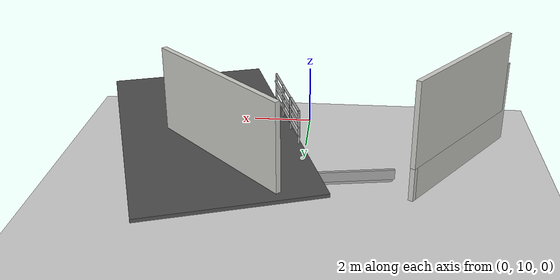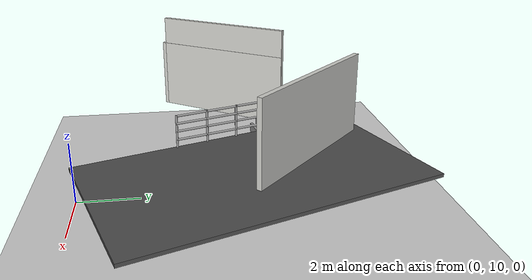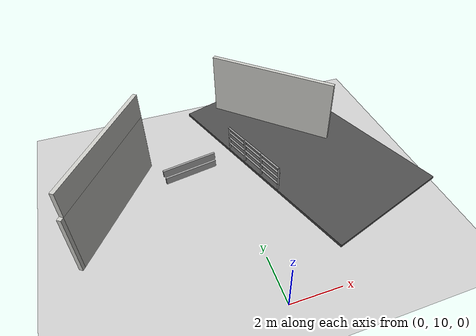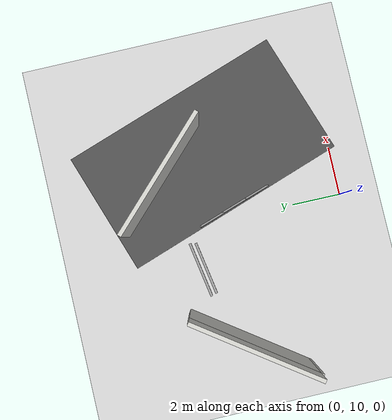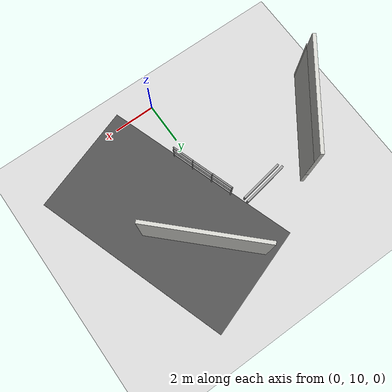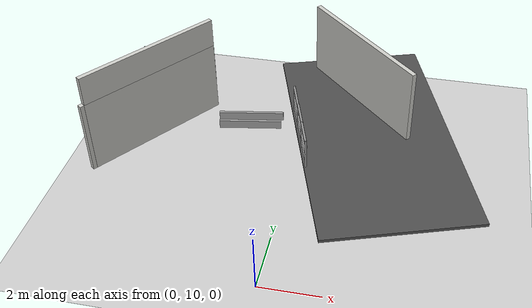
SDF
<sdf version="1.6">
 <world name="default">
  <model name="ground_plane">
   <static>1</static>
   <link name="link">
    <collision name="collision">
     <geometry><plane><normal>0 0 1</normal><size>100 100</size></plane></geometry>
     <surface><friction><ode><mu>100</mu><mu2>50</mu2></ode></friction></surface>
    </collision>
    <visual name="visual">
     <cast_shadows>0</cast_shadows>
     <geometry><plane><normal>0 0 1</normal><size>100 100</size></plane></geometry>
     <material>
      <script><uri>file://media/materials/scripts/gazebo.material</uri><name>Gazebo/Grey</name></script>
     </material>
    </visual>
   </link>
  </model>
  <model name="Untitled_1_0_clone_clone">
   <pose>-5.9653 16.0414 1.05157 0 -0 0.949354</pose>
   <link name="Wall_16">
    <collision name="Wall_16_Collision">
     <geometry><box><size>5 0.15 2.5</size></box></geometry>
     <pose>0 0 1.25 0 -0 0</pose>
    </collision>
    <visual name="Wall_16_Visual">
     <pose>0 0 1.25 0 -0 0</pose>
     <geometry><box><size>5 0.15 2.5</size></box></geometry>
     <material>
      <script><uri>file://media/materials/scripts/gazebo.material</uri><name>Gazebo/CeilingTiled</name></script>
      <ambient>1 1 1 1</ambient>
     </material>
     <meta><layer>0</layer></meta>
    </visual>
    <pose>0 -1.66958 0 0 -0 0</pose>
   </link>
   <static>1</static>
  </model>
  <model name="Untitled_1_0_clone_clone_0">
   <pose>0.845159 15.7579 2.03023 0 -0 2.36363</pose>
   <link name="Wall_16">
    <collision name="Wall_16_Collision">
     <geometry><box><size>5 0.15 2.5</size></box></geometry>
     <pose>0 0 1.25 0 -0 0</pose>
    </collision>
    <visual name="Wall_16_Visual">
     <pose>0 0 1.25 0 -0 0</pose>
     <geometry><box><size>5 0.15 2.5</size></box></geometry>
     <material>
      <script><uri>file://media/materials/scripts/gazebo.material</uri><name>Gazebo/CeilingTiled</name></script>
      <ambient>1 1 1 1</ambient>
     </material>
     <meta><layer>0</layer></meta>
    </visual>
    <pose>0 -1.66958 0 0 -0 0</pose>
   </link>
   <static>1</static>
  </model>
  <model name="Untitled_1_0_clone_clone_clone_0">
   <pose>-6.04514 15.9304 1.05157 0 -0 0.949354</pose>
   <link name="Wall_16">
    <collision name="Wall_16_Collision">
     <geometry><box><size>5 0.15 2.5</size></box></geometry>
     <pose>0 0 1.25 0 -0 0</pose>
    </collision>
    <visual name="Wall_16_Visual">
     <pose>0 0 1.25 0 -0 0</pose>
     <geometry><box><size>5 0.15 2.5</size></box></geometry>
     <material>
      <script><uri>file://media/materials/scripts/gazebo.material</uri><name>Gazebo/CeilingTiled</name></script>
      <ambient>1 1 1 1</ambient>
     </material>
     <meta><layer>0</layer></meta>
    </visual>
    <pose>0 -1.66958 0 0 -0 0</pose>
   </link>
   <static>1</static>
  </model>
  <model name="Untitled_1_0_clone_clone_clone_1">
   <pose>-5.96213 16.0475 2.02791 0 -0 0.949354</pose>
   <link name="Wall_16">
    <collision name="Wall_16_Collision">
     <geometry><box><size>5 0.15 2.5</size></box></geometry>
     <pose>0 0 1.25 0 -0 0</pose>
    </collision>
    <visual name="Wall_16_Visual">
     <pose>0 0 1.25 0 -0 0</pose>
     <geometry><box><size>5 0.15 2.5</size></box></geometry>
     <material>
      <script><uri>file://media/materials/scripts/gazebo.material</uri><name>Gazebo/CeilingTiled</name></script>
      <ambient>1 1 1 1</ambient>
     </material>
     <meta><layer>0</layer></meta>
    </visual>
    <pose>0 -1.66958 0 0 -0 0</pose>
   </link>
   <static>1</static>
  </model>
  <model name="unit_box_0_static_clone_0_clone_clone_0_clone">
   <link name="link">
    <inertial>
     <mass>1</mass>
     <inertia>
      <ixx>0.166667</ixx>
      <ixy>0</ixy>
      <ixz>0</ixz>
      <iyy>0.166667</iyy>
      <iyz>0</iyz>
      <izz>0.166667</izz>
     </inertia>
    </inertial>
    <visual name="visual">
     <geometry><box><size>0.092218 2.12592 0.294956</size></box></geometry>
     <material>
      <script><name>Gazebo/Grey</name><uri>file://media/materials/scripts/gazebo.material</uri></script>
      <shader type="pixel"/>
     </material>
    </visual>
    <collision name="collision">
     <geometry><box><size>0.092218 2.12592 0.294956</size></box></geometry>
     <surface>
      <friction>
       <ode><mu>1</mu><mu2>1</mu2><fdir1>0 0 0</fdir1><slip1>0</slip1><slip2>0</slip2></ode>
       <torsional>
        <coefficient>1</coefficient>
        <patch_radius>0</patch_radius>
        <surface_radius>0</surface_radius>
        <use_patch_radius>1</use_patch_radius>
        <ode><slip>0</slip></ode>
       </torsional>
      </friction>
      <bounce><restitution_coefficient>0</restitution_coefficient><threshold>1e+06</threshold></bounce>
      <contact>
       <collide_without_contact>0</collide_without_contact>
       <collide_without_contact_bitmask>1</collide_without_contact_bitmask>
       <collide_bitmask>1</collide_bitmask>
       <ode>
        <soft_cfm>0</soft_cfm>
        <soft_erp>0.2</soft_erp>
        <kp>1e+13</kp>
        <kd>1</kd>
        <max_vel>0.01</max_vel>
        <min_depth>0</min_depth>
       </ode>
       <bullet>
        <split_impulse>1</split_impulse>
        <split_impulse_penetration_threshold>-0.01</split_impulse_penetration_threshold>
        <soft_cfm>0</soft_cfm>
        <soft_erp>0.2</soft_erp>
        <kp>1e+13</kp>
        <kd>1</kd>
       </bullet>
      </contact>
     </surface>
    </collision>
   </link>
   <static>1</static>
   <pose>-1.6638 16.1101 1.12807 0 0 -1.40144</pose>
  </model>
  <model name="indoor_fence_2">
   <link name="link">
    <inertial>
     <mass>1</mass>
     <inertia><ixx>0.145833</ixx><ixy>0</ixy><ixz>0</ixz><iyy>0.145833</iyy><iyz>0</iyz><izz>0.125</izz></inertia>
    </inertial>
    <pose>0.071704 -0.128855 0 0 -0 0</pose>
    <visual name="visual">
     <geometry><cylinder><radius>0.0332942</radius><length>1</length></cylinder></geometry>
     <material>
      <script><name>Gazebo/Grey</name><uri>file://media/materials/scripts/gazebo.material</uri></script>
      <shader type="pixel"/>
     </material>
    </visual>
    <collision name="collision">
     <geometry><cylinder><radius>0.033294</radius><length>1</length></cylinder></geometry>
     <surface>
      <friction>
       <ode><mu>1</mu><mu2>1</mu2><fdir1>0 0 0</fdir1><slip1>0</slip1><slip2>0</slip2></ode>
       <torsional>
        <coefficient>1</coefficient>
        <patch_radius>0</patch_radius>
        <surface_radius>0</surface_radius>
        <use_patch_radius>1</use_patch_radius>
        <ode><slip>0</slip></ode>
       </torsional>
      </friction>
      <bounce><restitution_coefficient>0</restitution_coefficient><threshold>1e+06</threshold></bounce>
      <contact>
       <collide_without_contact>0</collide_without_contact>
       <collide_without_contact_bitmask>1</collide_without_contact_bitmask>
       <collide_bitmask>1</collide_bitmask>
       <ode>
        <soft_cfm>0</soft_cfm>
        <soft_erp>0.2</soft_erp>
        <kp>1e+13</kp>
        <kd>1</kd>
        <max_vel>0.01</max_vel>
        <min_depth>0</min_depth>
       </ode>
       <bullet>
        <split_impulse>1</split_impulse>
        <split_impulse_penetration_threshold>-0.01</split_impulse_penetration_threshold>
        <soft_cfm>0</soft_cfm>
        <soft_erp>0.2</soft_erp>
        <kp>1e+13</kp>
        <kd>1</kd>
       </bullet>
      </contact>
     </surface>
    </collision>
   </link>
   <link name="link_clone">
    <inertial>
     <mass>1</mass>
     <inertia><ixx>0.145833</ixx><ixy>0</ixy><ixz>0</ixz><iyy>0.145833</iyy><iyz>0</iyz><izz>0.125</izz></inertia>
    </inertial>
    <pose>0.369391 -1.02864 0 0 -0 0</pose>
    <visual name="visual">
     <geometry><cylinder><radius>0.0332942</radius><length>1</length></cylinder></geometry>
     <material>
      <script><name>Gazebo/Grey</name><uri>file://media/materials/scripts/gazebo.material</uri></script>
      <shader type="pixel"/>
     </material>
    </visual>
    <collision name="collision">
     <geometry><cylinder><radius>0.033294</radius><length>1</length></cylinder></geometry>
     <surface>
      <friction>
       <ode><mu>1</mu><mu2>1</mu2><fdir1>0 0 0</fdir1><slip1>0</slip1><slip2>0</slip2></ode>
       <torsional>
        <coefficient>1</coefficient>
        <patch_radius>0</patch_radius>
        <surface_radius>0</surface_radius>
        <use_patch_radius>1</use_patch_radius>
        <ode><slip>0</slip></ode>
       </torsional>
      </friction>
      <bounce><restitution_coefficient>0</restitution_coefficient><threshold>1e+06</threshold></bounce>
      <contact>
       <collide_without_contact>0</collide_without_contact>
       <collide_without_contact_bitmask>1</collide_without_contact_bitmask>
       <collide_bitmask>1</collide_bitmask>
       <ode>
        <soft_cfm>0</soft_cfm>
        <soft_erp>0.2</soft_erp>
        <kp>1e+13</kp>
        <kd>1</kd>
        <max_vel>0.01</max_vel>
        <min_depth>0</min_depth>
       </ode>
       <bullet>
        <split_impulse>1</split_impulse>
        <split_impulse_penetration_threshold>-0.01</split_impulse_penetration_threshold>
        <soft_cfm>0</soft_cfm>
        <soft_erp>0.2</soft_erp>
        <kp>1e+13</kp>
        <kd>1</kd>
       </bullet>
      </contact>
     </surface>
    </collision>
   </link>
   <link name="link_clone_0">
    <inertial>
     <mass>1</mass>
     <inertia><ixx>0.145833</ixx><ixy>0</ixy><ixz>0</ixz><iyy>0.145833</iyy><iyz>0</iyz><izz>0.125</izz></inertia>
    </inertial>
    <pose>0.220035 -0.575022 -0.262394 -1.57275 0.000646 0.319166</pose>
    <visual name="visual">
     <geometry><cylinder><radius>0.0332942</radius><length>1</length></cylinder></geometry>
     <material>
      <script><name>Gazebo/Grey</name><uri>file://media/materials/scripts/gazebo.material</uri></script>
      <shader type="pixel"/>
     </material>
    </visual>
    <collision name="collision">
     <geometry><cylinder><radius>0.033294</radius><length>1</length></cylinder></geometry>
     <surface>
      <friction>
       <ode><mu>1</mu><mu2>1</mu2><fdir1>0 0 0</fdir1><slip1>0</slip1><slip2>0</slip2></ode>
       <torsional>
        <coefficient>1</coefficient>
        <patch_radius>0</patch_radius>
        <surface_radius>0</surface_radius>
        <use_patch_radius>1</use_patch_radius>
        <ode><slip>0</slip></ode>
       </torsional>
      </friction>
      <bounce><restitution_coefficient>0</restitution_coefficient><threshold>1e+06</threshold></bounce>
      <contact>
       <collide_without_contact>0</collide_without_contact>
       <collide_without_contact_bitmask>1</collide_without_contact_bitmask>
       <collide_bitmask>1</collide_bitmask>
       <ode>
        <soft_cfm>0</soft_cfm>
        <soft_erp>0.2</soft_erp>
        <kp>1e+13</kp>
        <kd>1</kd>
        <max_vel>0.01</max_vel>
        <min_depth>0</min_depth>
       </ode>
       <bullet>
        <split_impulse>1</split_impulse>
        <split_impulse_penetration_threshold>-0.01</split_impulse_penetration_threshold>
        <soft_cfm>0</soft_cfm>
        <soft_erp>0.2</soft_erp>
        <kp>1e+13</kp>
        <kd>1</kd>
       </bullet>
      </contact>
     </surface>
    </collision>
   </link>
   <link name="link_clone_0_clone">
    <inertial>
     <mass>1</mass>
     <inertia><ixx>0.145833</ixx><ixy>0</ixy><ixz>0</ixz><iyy>0.145833</iyy><iyz>0</iyz><izz>0.125</izz></inertia>
    </inertial>
    <pose>0.220715 -0.57597 9e-06 -1.57275 0.000646 0.319166</pose>
    <visual name="visual">
     <geometry><cylinder><radius>0.0332942</radius><length>1</length></cylinder></geometry>
     <material>
      <script><name>Gazebo/Grey</name><uri>file://media/materials/scripts/gazebo.material</uri></script>
      <shader type="pixel"/>
     </material>
    </visual>
    <collision name="collision">
     <geometry><cylinder><radius>0.033294</radius><length>1</length></cylinder></geometry>
     <surface>
      <friction>
       <ode><mu>1</mu><mu2>1</mu2><fdir1>0 0 0</fdir1><slip1>0</slip1><slip2>0</slip2></ode>
       <torsional>
        <coefficient>1</coefficient>
        <patch_radius>0</patch_radius>
        <surface_radius>0</surface_radius>
        <use_patch_radius>1</use_patch_radius>
        <ode><slip>0</slip></ode>
       </torsional>
      </friction>
      <bounce><restitution_coefficient>0</restitution_coefficient><threshold>1e+06</threshold></bounce>
      <contact>
       <collide_without_contact>0</collide_without_contact>
       <collide_without_contact_bitmask>1</collide_without_contact_bitmask>
       <collide_bitmask>1</collide_bitmask>
       <ode>
        <soft_cfm>0</soft_cfm>
        <soft_erp>0.2</soft_erp>
        <kp>1e+13</kp>
        <kd>1</kd>
        <max_vel>0.01</max_vel>
        <min_depth>0</min_depth>
       </ode>
       <bullet>
        <split_impulse>1</split_impulse>
        <split_impulse_penetration_threshold>-0.01</split_impulse_penetration_threshold>
        <soft_cfm>0</soft_cfm>
        <soft_erp>0.2</soft_erp>
        <kp>1e+13</kp>
        <kd>1</kd>
       </bullet>
      </contact>
     </surface>
    </collision>
   </link>
   <link name="link_clone_0_clone_0">
    <inertial>
     <mass>1</mass>
     <inertia><ixx>0.145833</ixx><ixy>0</ixy><ixz>0</ixz><iyy>0.145833</iyy><iyz>0</iyz><izz>0.125</izz></inertia>
    </inertial>
    <pose>0.236881 -0.573625 0.245272 -1.57275 0.000646 0.319166</pose>
    <visual name="visual">
     <geometry><cylinder><radius>0.0332942</radius><length>1</length></cylinder></geometry>
     <material>
      <script><name>Gazebo/Grey</name><uri>file://media/materials/scripts/gazebo.material</uri></script>
      <shader type="pixel"/>
     </material>
    </visual>
    <collision name="collision">
     <geometry><cylinder><radius>0.033294</radius><length>1</length></cylinder></geometry>
     <surface>
      <friction>
       <ode><mu>1</mu><mu2>1</mu2><fdir1>0 0 0</fdir1><slip1>0</slip1><slip2>0</slip2></ode>
       <torsional>
        <coefficient>1</coefficient>
        <patch_radius>0</patch_radius>
        <surface_radius>0</surface_radius>
        <use_patch_radius>1</use_patch_radius>
        <ode><slip>0</slip></ode>
       </torsional>
      </friction>
      <bounce><restitution_coefficient>0</restitution_coefficient><threshold>1e+06</threshold></bounce>
      <contact>
       <collide_without_contact>0</collide_without_contact>
       <collide_without_contact_bitmask>1</collide_without_contact_bitmask>
       <collide_bitmask>1</collide_bitmask>
       <ode>
        <soft_cfm>0</soft_cfm>
        <soft_erp>0.2</soft_erp>
        <kp>1e+13</kp>
        <kd>1</kd>
        <max_vel>0.01</max_vel>
        <min_depth>0</min_depth>
       </ode>
       <bullet>
        <split_impulse>1</split_impulse>
        <split_impulse_penetration_threshold>-0.01</split_impulse_penetration_threshold>
        <soft_cfm>0</soft_cfm>
        <soft_erp>0.2</soft_erp>
        <kp>1e+13</kp>
        <kd>1</kd>
       </bullet>
      </contact>
     </surface>
    </collision>
   </link>
   <link name="link_clone_0_clone_1">
    <inertial>
     <mass>1</mass>
     <inertia><ixx>0.145833</ixx><ixy>0</ixy><ixz>0</ixz><iyy>0.145833</iyy><iyz>0</iyz><izz>0.125</izz></inertia>
    </inertial>
    <pose>0.215457 -0.570916 0.471531 -1.57275 0.000646 0.319166</pose>
    <visual name="visual">
     <geometry><cylinder><radius>0.0332942</radius><length>1</length></cylinder></geometry>
     <material>
      <script><name>Gazebo/Grey</name><uri>file://media/materials/scripts/gazebo.material</uri></script>
      <shader type="pixel"/>
     </material>
    </visual>
    <collision name="collision">
     <geometry><cylinder><radius>0.033294</radius><length>1</length></cylinder></geometry>
     <surface>
      <friction>
       <ode><mu>1</mu><mu2>1</mu2><fdir1>0 0 0</fdir1><slip1>0</slip1><slip2>0</slip2></ode>
       <torsional>
        <coefficient>1</coefficient>
        <patch_radius>0</patch_radius>
        <surface_radius>0</surface_radius>
        <use_patch_radius>1</use_patch_radius>
        <ode><slip>0</slip></ode>
       </torsional>
      </friction>
      <bounce><restitution_coefficient>0</restitution_coefficient><threshold>1e+06</threshold></bounce>
      <contact>
       <collide_without_contact>0</collide_without_contact>
       <collide_without_contact_bitmask>1</collide_without_contact_bitmask>
       <collide_bitmask>1</collide_bitmask>
       <ode>
        <soft_cfm>0</soft_cfm>
        <soft_erp>0.2</soft_erp>
        <kp>1e+13</kp>
        <kd>1</kd>
        <max_vel>0.01</max_vel>
        <min_depth>0</min_depth>
       </ode>
       <bullet>
        <split_impulse>1</split_impulse>
        <split_impulse_penetration_threshold>-0.01</split_impulse_penetration_threshold>
        <soft_cfm>0</soft_cfm>
        <soft_erp>0.2</soft_erp>
        <kp>1e+13</kp>
        <kd>1</kd>
       </bullet>
      </contact>
     </surface>
    </collision>
   </link>
   <static>1</static>
   <pose>0.482181 14.2656 2.56606 0 -0 0</pose>
  </model>
  <model name="indoor_fence_3">
   <link name="link">
    <inertial>
     <mass>1</mass>
     <inertia><ixx>0.145833</ixx><ixy>0</ixy><ixz>0</ixz><iyy>0.145833</iyy><iyz>0</iyz><izz>0.125</izz></inertia>
    </inertial>
    <pose>0.071704 -0.128855 0 0 -0 0</pose>
    <visual name="visual">
     <geometry><cylinder><radius>0.0332942</radius><length>1</length></cylinder></geometry>
     <material>
      <script><name>Gazebo/Grey</name><uri>file://media/materials/scripts/gazebo.material</uri></script>
      <shader type="pixel"/>
     </material>
    </visual>
    <collision name="collision">
     <geometry><cylinder><radius>0.033294</radius><length>1</length></cylinder></geometry>
     <surface>
      <friction>
       <ode><mu>1</mu><mu2>1</mu2><fdir1>0 0 0</fdir1><slip1>0</slip1><slip2>0</slip2></ode>
       <torsional>
        <coefficient>1</coefficient>
        <patch_radius>0</patch_radius>
        <surface_radius>0</surface_radius>
        <use_patch_radius>1</use_patch_radius>
        <ode><slip>0</slip></ode>
       </torsional>
      </friction>
      <bounce><restitution_coefficient>0</restitution_coefficient><threshold>1e+06</threshold></bounce>
      <contact>
       <collide_without_contact>0</collide_without_contact>
       <collide_without_contact_bitmask>1</collide_without_contact_bitmask>
       <collide_bitmask>1</collide_bitmask>
       <ode>
        <soft_cfm>0</soft_cfm>
        <soft_erp>0.2</soft_erp>
        <kp>1e+13</kp>
        <kd>1</kd>
        <max_vel>0.01</max_vel>
        <min_depth>0</min_depth>
       </ode>
       <bullet>
        <split_impulse>1</split_impulse>
        <split_impulse_penetration_threshold>-0.01</split_impulse_penetration_threshold>
        <soft_cfm>0</soft_cfm>
        <soft_erp>0.2</soft_erp>
        <kp>1e+13</kp>
        <kd>1</kd>
       </bullet>
      </contact>
     </surface>
    </collision>
   </link>
   <link name="link_clone">
    <inertial>
     <mass>1</mass>
     <inertia><ixx>0.145833</ixx><ixy>0</ixy><ixz>0</ixz><iyy>0.145833</iyy><iyz>0</iyz><izz>0.125</izz></inertia>
    </inertial>
    <pose>0.369391 -1.02864 0 0 -0 0</pose>
    <visual name="visual">
     <geometry><cylinder><radius>0.0332942</radius><length>1</length></cylinder></geometry>
     <material>
      <script><name>Gazebo/Grey</name><uri>file://media/materials/scripts/gazebo.material</uri></script>
      <shader type="pixel"/>
     </material>
    </visual>
    <collision name="collision">
     <geometry><cylinder><radius>0.033294</radius><length>1</length></cylinder></geometry>
     <surface>
      <friction>
       <ode><mu>1</mu><mu2>1</mu2><fdir1>0 0 0</fdir1><slip1>0</slip1><slip2>0</slip2></ode>
       <torsional>
        <coefficient>1</coefficient>
        <patch_radius>0</patch_radius>
        <surface_radius>0</surface_radius>
        <use_patch_radius>1</use_patch_radius>
        <ode><slip>0</slip></ode>
       </torsional>
      </friction>
      <bounce><restitution_coefficient>0</restitution_coefficient><threshold>1e+06</threshold></bounce>
      <contact>
       <collide_without_contact>0</collide_without_contact>
       <collide_without_contact_bitmask>1</collide_without_contact_bitmask>
       <collide_bitmask>1</collide_bitmask>
       <ode>
        <soft_cfm>0</soft_cfm>
        <soft_erp>0.2</soft_erp>
        <kp>1e+13</kp>
        <kd>1</kd>
        <max_vel>0.01</max_vel>
        <min_depth>0</min_depth>
       </ode>
       <bullet>
        <split_impulse>1</split_impulse>
        <split_impulse_penetration_threshold>-0.01</split_impulse_penetration_threshold>
        <soft_cfm>0</soft_cfm>
        <soft_erp>0.2</soft_erp>
        <kp>1e+13</kp>
        <kd>1</kd>
       </bullet>
      </contact>
     </surface>
    </collision>
   </link>
   <link name="link_clone_0">
    <inertial>
     <mass>1</mass>
     <inertia><ixx>0.145833</ixx><ixy>0</ixy><ixz>0</ixz><iyy>0.145833</iyy><iyz>0</iyz><izz>0.125</izz></inertia>
    </inertial>
    <pose>0.220035 -0.575022 -0.262394 -1.57275 0.000646 0.319166</pose>
    <visual name="visual">
     <geometry><cylinder><radius>0.0332942</radius><length>1</length></cylinder></geometry>
     <material>
      <script><name>Gazebo/Grey</name><uri>file://media/materials/scripts/gazebo.material</uri></script>
      <shader type="pixel"/>
     </material>
    </visual>
    <collision name="collision">
     <geometry><cylinder><radius>0.033294</radius><length>1</length></cylinder></geometry>
     <surface>
      <friction>
       <ode><mu>1</mu><mu2>1</mu2><fdir1>0 0 0</fdir1><slip1>0</slip1><slip2>0</slip2></ode>
       <torsional>
        <coefficient>1</coefficient>
        <patch_radius>0</patch_radius>
        <surface_radius>0</surface_radius>
        <use_patch_radius>1</use_patch_radius>
        <ode><slip>0</slip></ode>
       </torsional>
      </friction>
      <bounce><restitution_coefficient>0</restitution_coefficient><threshold>1e+06</threshold></bounce>
      <contact>
       <collide_without_contact>0</collide_without_contact>
       <collide_without_contact_bitmask>1</collide_without_contact_bitmask>
       <collide_bitmask>1</collide_bitmask>
       <ode>
        <soft_cfm>0</soft_cfm>
        <soft_erp>0.2</soft_erp>
        <kp>1e+13</kp>
        <kd>1</kd>
        <max_vel>0.01</max_vel>
        <min_depth>0</min_depth>
       </ode>
       <bullet>
        <split_impulse>1</split_impulse>
        <split_impulse_penetration_threshold>-0.01</split_impulse_penetration_threshold>
        <soft_cfm>0</soft_cfm>
        <soft_erp>0.2</soft_erp>
        <kp>1e+13</kp>
        <kd>1</kd>
       </bullet>
      </contact>
     </surface>
    </collision>
   </link>
   <link name="link_clone_0_clone">
    <inertial>
     <mass>1</mass>
     <inertia><ixx>0.145833</ixx><ixy>0</ixy><ixz>0</ixz><iyy>0.145833</iyy><iyz>0</iyz><izz>0.125</izz></inertia>
    </inertial>
    <pose>0.220715 -0.57597 9e-06 -1.57275 0.000646 0.319166</pose>
    <visual name="visual">
     <geometry><cylinder><radius>0.0332942</radius><length>1</length></cylinder></geometry>
     <material>
      <script><name>Gazebo/Grey</name><uri>file://media/materials/scripts/gazebo.material</uri></script>
      <shader type="pixel"/>
     </material>
    </visual>
    <collision name="collision">
     <geometry><cylinder><radius>0.033294</radius><length>1</length></cylinder></geometry>
     <surface>
      <friction>
       <ode><mu>1</mu><mu2>1</mu2><fdir1>0 0 0</fdir1><slip1>0</slip1><slip2>0</slip2></ode>
       <torsional>
        <coefficient>1</coefficient>
        <patch_radius>0</patch_radius>
        <surface_radius>0</surface_radius>
        <use_patch_radius>1</use_patch_radius>
        <ode><slip>0</slip></ode>
       </torsional>
      </friction>
      <bounce><restitution_coefficient>0</restitution_coefficient><threshold>1e+06</threshold></bounce>
      <contact>
       <collide_without_contact>0</collide_without_contact>
       <collide_without_contact_bitmask>1</collide_without_contact_bitmask>
       <collide_bitmask>1</collide_bitmask>
       <ode>
        <soft_cfm>0</soft_cfm>
        <soft_erp>0.2</soft_erp>
        <kp>1e+13</kp>
        <kd>1</kd>
        <max_vel>0.01</max_vel>
        <min_depth>0</min_depth>
       </ode>
       <bullet>
        <split_impulse>1</split_impulse>
        <split_impulse_penetration_threshold>-0.01</split_impulse_penetration_threshold>
        <soft_cfm>0</soft_cfm>
        <soft_erp>0.2</soft_erp>
        <kp>1e+13</kp>
        <kd>1</kd>
       </bullet>
      </contact>
     </surface>
    </collision>
   </link>
   <link name="link_clone_0_clone_0">
    <inertial>
     <mass>1</mass>
     <inertia><ixx>0.145833</ixx><ixy>0</ixy><ixz>0</ixz><iyy>0.145833</iyy><iyz>0</iyz><izz>0.125</izz></inertia>
    </inertial>
    <pose>0.236881 -0.573625 0.245272 -1.57275 0.000646 0.319166</pose>
    <visual name="visual">
     <geometry><cylinder><radius>0.0332942</radius><length>1</length></cylinder></geometry>
     <material>
      <script><name>Gazebo/Grey</name><uri>file://media/materials/scripts/gazebo.material</uri></script>
      <shader type="pixel"/>
     </material>
    </visual>
    <collision name="collision">
     <geometry><cylinder><radius>0.033294</radius><length>1</length></cylinder></geometry>
     <surface>
      <friction>
       <ode><mu>1</mu><mu2>1</mu2><fdir1>0 0 0</fdir1><slip1>0</slip1><slip2>0</slip2></ode>
       <torsional>
        <coefficient>1</coefficient>
        <patch_radius>0</patch_radius>
        <surface_radius>0</surface_radius>
        <use_patch_radius>1</use_patch_radius>
        <ode><slip>0</slip></ode>
       </torsional>
      </friction>
      <bounce><restitution_coefficient>0</restitution_coefficient><threshold>1e+06</threshold></bounce>
      <contact>
       <collide_without_contact>0</collide_without_contact>
       <collide_without_contact_bitmask>1</collide_without_contact_bitmask>
       <collide_bitmask>1</collide_bitmask>
       <ode>
        <soft_cfm>0</soft_cfm>
        <soft_erp>0.2</soft_erp>
        <kp>1e+13</kp>
        <kd>1</kd>
        <max_vel>0.01</max_vel>
        <min_depth>0</min_depth>
       </ode>
       <bullet>
        <split_impulse>1</split_impulse>
        <split_impulse_penetration_threshold>-0.01</split_impulse_penetration_threshold>
        <soft_cfm>0</soft_cfm>
        <soft_erp>0.2</soft_erp>
        <kp>1e+13</kp>
        <kd>1</kd>
       </bullet>
      </contact>
     </surface>
    </collision>
   </link>
   <link name="link_clone_0_clone_1">
    <inertial>
     <mass>1</mass>
     <inertia><ixx>0.145833</ixx><ixy>0</ixy><ixz>0</ixz><iyy>0.145833</iyy><iyz>0</iyz><izz>0.125</izz></inertia>
    </inertial>
    <pose>0.215457 -0.570916 0.471531 -1.57275 0.000646 0.319166</pose>
    <visual name="visual">
     <geometry><cylinder><radius>0.0332942</radius><length>1</length></cylinder></geometry>
     <material>
      <script><name>Gazebo/Grey</name><uri>file://media/materials/scripts/gazebo.material</uri></script>
      <shader type="pixel"/>
     </material>
    </visual>
    <collision name="collision">
     <geometry><cylinder><radius>0.033294</radius><length>1</length></cylinder></geometry>
     <surface>
      <friction>
       <ode><mu>1</mu><mu2>1</mu2><fdir1>0 0 0</fdir1><slip1>0</slip1><slip2>0</slip2></ode>
       <torsional>
        <coefficient>1</coefficient>
        <patch_radius>0</patch_radius>
        <surface_radius>0</surface_radius>
        <use_patch_radius>1</use_patch_radius>
        <ode><slip>0</slip></ode>
       </torsional>
      </friction>
      <bounce><restitution_coefficient>0</restitution_coefficient><threshold>1e+06</threshold></bounce>
      <contact>
       <collide_without_contact>0</collide_without_contact>
       <collide_without_contact_bitmask>1</collide_without_contact_bitmask>
       <collide_bitmask>1</collide_bitmask>
       <ode>
        <soft_cfm>0</soft_cfm>
        <soft_erp>0.2</soft_erp>
        <kp>1e+13</kp>
        <kd>1</kd>
        <max_vel>0.01</max_vel>
        <min_depth>0</min_depth>
       </ode>
       <bullet>
        <split_impulse>1</split_impulse>
        <split_impulse_penetration_threshold>-0.01</split_impulse_penetration_threshold>
        <soft_cfm>0</soft_cfm>
        <soft_erp>0.2</soft_erp>
        <kp>1e+13</kp>
        <kd>1</kd>
       </bullet>
      </contact>
     </surface>
    </collision>
   </link>
   <static>1</static>
   <pose>0.186416 15.1658 2.56606 0 -0 0</pose>
  </model>
  <model name="indoor_fence_4">
   <link name="link">
    <inertial>
     <mass>1</mass>
     <inertia><ixx>0.145833</ixx><ixy>0</ixy><ixz>0</ixz><iyy>0.145833</iyy><iyz>0</iyz><izz>0.125</izz></inertia>
    </inertial>
    <pose>0.071704 -0.128855 0 0 -0 0</pose>
    <visual name="visual">
     <geometry><cylinder><radius>0.0332942</radius><length>1</length></cylinder></geometry>
     <material>
      <script><name>Gazebo/Grey</name><uri>file://media/materials/scripts/gazebo.material</uri></script>
      <shader type="pixel"/>
     </material>
    </visual>
    <collision name="collision">
     <geometry><cylinder><radius>0.033294</radius><length>1</length></cylinder></geometry>
     <surface>
      <friction>
       <ode><mu>1</mu><mu2>1</mu2><fdir1>0 0 0</fdir1><slip1>0</slip1><slip2>0</slip2></ode>
       <torsional>
        <coefficient>1</coefficient>
        <patch_radius>0</patch_radius>
        <surface_radius>0</surface_radius>
        <use_patch_radius>1</use_patch_radius>
        <ode><slip>0</slip></ode>
       </torsional>
      </friction>
      <bounce><restitution_coefficient>0</restitution_coefficient><threshold>1e+06</threshold></bounce>
      <contact>
       <collide_without_contact>0</collide_without_contact>
       <collide_without_contact_bitmask>1</collide_without_contact_bitmask>
       <collide_bitmask>1</collide_bitmask>
       <ode>
        <soft_cfm>0</soft_cfm>
        <soft_erp>0.2</soft_erp>
        <kp>1e+13</kp>
        <kd>1</kd>
        <max_vel>0.01</max_vel>
        <min_depth>0</min_depth>
       </ode>
       <bullet>
        <split_impulse>1</split_impulse>
        <split_impulse_penetration_threshold>-0.01</split_impulse_penetration_threshold>
        <soft_cfm>0</soft_cfm>
        <soft_erp>0.2</soft_erp>
        <kp>1e+13</kp>
        <kd>1</kd>
       </bullet>
      </contact>
     </surface>
    </collision>
   </link>
   <link name="link_clone">
    <inertial>
     <mass>1</mass>
     <inertia><ixx>0.145833</ixx><ixy>0</ixy><ixz>0</ixz><iyy>0.145833</iyy><iyz>0</iyz><izz>0.125</izz></inertia>
    </inertial>
    <pose>0.369391 -1.02864 0 0 -0 0</pose>
    <visual name="visual">
     <geometry><cylinder><radius>0.0332942</radius><length>1</length></cylinder></geometry>
     <material>
      <script><name>Gazebo/Grey</name><uri>file://media/materials/scripts/gazebo.material</uri></script>
      <shader type="pixel"/>
     </material>
    </visual>
    <collision name="collision">
     <geometry><cylinder><radius>0.033294</radius><length>1</length></cylinder></geometry>
     <surface>
      <friction>
       <ode><mu>1</mu><mu2>1</mu2><fdir1>0 0 0</fdir1><slip1>0</slip1><slip2>0</slip2></ode>
       <torsional>
        <coefficient>1</coefficient>
        <patch_radius>0</patch_radius>
        <surface_radius>0</surface_radius>
        <use_patch_radius>1</use_patch_radius>
        <ode><slip>0</slip></ode>
       </torsional>
      </friction>
      <bounce><restitution_coefficient>0</restitution_coefficient><threshold>1e+06</threshold></bounce>
      <contact>
       <collide_without_contact>0</collide_without_contact>
       <collide_without_contact_bitmask>1</collide_without_contact_bitmask>
       <collide_bitmask>1</collide_bitmask>
       <ode>
        <soft_cfm>0</soft_cfm>
        <soft_erp>0.2</soft_erp>
        <kp>1e+13</kp>
        <kd>1</kd>
        <max_vel>0.01</max_vel>
        <min_depth>0</min_depth>
       </ode>
       <bullet>
        <split_impulse>1</split_impulse>
        <split_impulse_penetration_threshold>-0.01</split_impulse_penetration_threshold>
        <soft_cfm>0</soft_cfm>
        <soft_erp>0.2</soft_erp>
        <kp>1e+13</kp>
        <kd>1</kd>
       </bullet>
      </contact>
     </surface>
    </collision>
   </link>
   <link name="link_clone_0">
    <inertial>
     <mass>1</mass>
     <inertia><ixx>0.145833</ixx><ixy>0</ixy><ixz>0</ixz><iyy>0.145833</iyy><iyz>0</iyz><izz>0.125</izz></inertia>
    </inertial>
    <pose>0.220035 -0.575022 -0.262394 -1.57275 0.000646 0.319166</pose>
    <visual name="visual">
     <geometry><cylinder><radius>0.0332942</radius><length>1</length></cylinder></geometry>
     <material>
      <script><name>Gazebo/Grey</name><uri>file://media/materials/scripts/gazebo.material</uri></script>
      <shader type="pixel"/>
     </material>
    </visual>
    <collision name="collision">
     <geometry><cylinder><radius>0.033294</radius><length>1</length></cylinder></geometry>
     <surface>
      <friction>
       <ode><mu>1</mu><mu2>1</mu2><fdir1>0 0 0</fdir1><slip1>0</slip1><slip2>0</slip2></ode>
       <torsional>
        <coefficient>1</coefficient>
        <patch_radius>0</patch_radius>
        <surface_radius>0</surface_radius>
        <use_patch_radius>1</use_patch_radius>
        <ode><slip>0</slip></ode>
       </torsional>
      </friction>
      <bounce><restitution_coefficient>0</restitution_coefficient><threshold>1e+06</threshold></bounce>
      <contact>
       <collide_without_contact>0</collide_without_contact>
       <collide_without_contact_bitmask>1</collide_without_contact_bitmask>
       <collide_bitmask>1</collide_bitmask>
       <ode>
        <soft_cfm>0</soft_cfm>
        <soft_erp>0.2</soft_erp>
        <kp>1e+13</kp>
        <kd>1</kd>
        <max_vel>0.01</max_vel>
        <min_depth>0</min_depth>
       </ode>
       <bullet>
        <split_impulse>1</split_impulse>
        <split_impulse_penetration_threshold>-0.01</split_impulse_penetration_threshold>
        <soft_cfm>0</soft_cfm>
        <soft_erp>0.2</soft_erp>
        <kp>1e+13</kp>
        <kd>1</kd>
       </bullet>
      </contact>
     </surface>
    </collision>
   </link>
   <link name="link_clone_0_clone">
    <inertial>
     <mass>1</mass>
     <inertia><ixx>0.145833</ixx><ixy>0</ixy><ixz>0</ixz><iyy>0.145833</iyy><iyz>0</iyz><izz>0.125</izz></inertia>
    </inertial>
    <pose>0.220715 -0.57597 9e-06 -1.57275 0.000646 0.319166</pose>
    <visual name="visual">
     <geometry><cylinder><radius>0.0332942</radius><length>1</length></cylinder></geometry>
     <material>
      <script><name>Gazebo/Grey</name><uri>file://media/materials/scripts/gazebo.material</uri></script>
      <shader type="pixel"/>
     </material>
    </visual>
    <collision name="collision">
     <geometry><cylinder><radius>0.033294</radius><length>1</length></cylinder></geometry>
     <surface>
      <friction>
       <ode><mu>1</mu><mu2>1</mu2><fdir1>0 0 0</fdir1><slip1>0</slip1><slip2>0</slip2></ode>
       <torsional>
        <coefficient>1</coefficient>
        <patch_radius>0</patch_radius>
        <surface_radius>0</surface_radius>
        <use_patch_radius>1</use_patch_radius>
        <ode><slip>0</slip></ode>
       </torsional>
      </friction>
      <bounce><restitution_coefficient>0</restitution_coefficient><threshold>1e+06</threshold></bounce>
      <contact>
       <collide_without_contact>0</collide_without_contact>
       <collide_without_contact_bitmask>1</collide_without_contact_bitmask>
       <collide_bitmask>1</collide_bitmask>
       <ode>
        <soft_cfm>0</soft_cfm>
        <soft_erp>0.2</soft_erp>
        <kp>1e+13</kp>
        <kd>1</kd>
        <max_vel>0.01</max_vel>
        <min_depth>0</min_depth>
       </ode>
       <bullet>
        <split_impulse>1</split_impulse>
        <split_impulse_penetration_threshold>-0.01</split_impulse_penetration_threshold>
        <soft_cfm>0</soft_cfm>
        <soft_erp>0.2</soft_erp>
        <kp>1e+13</kp>
        <kd>1</kd>
       </bullet>
      </contact>
     </surface>
    </collision>
   </link>
   <link name="link_clone_0_clone_0">
    <inertial>
     <mass>1</mass>
     <inertia><ixx>0.145833</ixx><ixy>0</ixy><ixz>0</ixz><iyy>0.145833</iyy><iyz>0</iyz><izz>0.125</izz></inertia>
    </inertial>
    <pose>0.236881 -0.573625 0.245272 -1.57275 0.000646 0.319166</pose>
    <visual name="visual">
     <geometry><cylinder><radius>0.0332942</radius><length>1</length></cylinder></geometry>
     <material>
      <script><name>Gazebo/Grey</name><uri>file://media/materials/scripts/gazebo.material</uri></script>
      <shader type="pixel"/>
     </material>
    </visual>
    <collision name="collision">
     <geometry><cylinder><radius>0.033294</radius><length>1</length></cylinder></geometry>
     <surface>
      <friction>
       <ode><mu>1</mu><mu2>1</mu2><fdir1>0 0 0</fdir1><slip1>0</slip1><slip2>0</slip2></ode>
       <torsional>
        <coefficient>1</coefficient>
        <patch_radius>0</patch_radius>
        <surface_radius>0</surface_radius>
        <use_patch_radius>1</use_patch_radius>
        <ode><slip>0</slip></ode>
       </torsional>
      </friction>
      <bounce><restitution_coefficient>0</restitution_coefficient><threshold>1e+06</threshold></bounce>
      <contact>
       <collide_without_contact>0</collide_without_contact>
       <collide_without_contact_bitmask>1</collide_without_contact_bitmask>
       <collide_bitmask>1</collide_bitmask>
       <ode>
        <soft_cfm>0</soft_cfm>
        <soft_erp>0.2</soft_erp>
        <kp>1e+13</kp>
        <kd>1</kd>
        <max_vel>0.01</max_vel>
        <min_depth>0</min_depth>
       </ode>
       <bullet>
        <split_impulse>1</split_impulse>
        <split_impulse_penetration_threshold>-0.01</split_impulse_penetration_threshold>
        <soft_cfm>0</soft_cfm>
        <soft_erp>0.2</soft_erp>
        <kp>1e+13</kp>
        <kd>1</kd>
       </bullet>
      </contact>
     </surface>
    </collision>
   </link>
   <link name="link_clone_0_clone_1">
    <inertial>
     <mass>1</mass>
     <inertia><ixx>0.145833</ixx><ixy>0</ixy><ixz>0</ixz><iyy>0.145833</iyy><iyz>0</iyz><izz>0.125</izz></inertia>
    </inertial>
    <pose>0.215457 -0.570916 0.471531 -1.57275 0.000646 0.319166</pose>
    <visual name="visual">
     <geometry><cylinder><radius>0.0332942</radius><length>1</length></cylinder></geometry>
     <material>
      <script><name>Gazebo/Grey</name><uri>file://media/materials/scripts/gazebo.material</uri></script>
      <shader type="pixel"/>
     </material>
    </visual>
    <collision name="collision">
     <geometry><cylinder><radius>0.033294</radius><length>1</length></cylinder></geometry>
     <surface>
      <friction>
       <ode><mu>1</mu><mu2>1</mu2><fdir1>0 0 0</fdir1><slip1>0</slip1><slip2>0</slip2></ode>
       <torsional>
        <coefficient>1</coefficient>
        <patch_radius>0</patch_radius>
        <surface_radius>0</surface_radius>
        <use_patch_radius>1</use_patch_radius>
        <ode><slip>0</slip></ode>
       </torsional>
      </friction>
      <bounce><restitution_coefficient>0</restitution_coefficient><threshold>1e+06</threshold></bounce>
      <contact>
       <collide_without_contact>0</collide_without_contact>
       <collide_without_contact_bitmask>1</collide_without_contact_bitmask>
       <collide_bitmask>1</collide_bitmask>
       <ode>
        <soft_cfm>0</soft_cfm>
        <soft_erp>0.2</soft_erp>
        <kp>1e+13</kp>
        <kd>1</kd>
        <max_vel>0.01</max_vel>
        <min_depth>0</min_depth>
       </ode>
       <bullet>
        <split_impulse>1</split_impulse>
        <split_impulse_penetration_threshold>-0.01</split_impulse_penetration_threshold>
        <soft_cfm>0</soft_cfm>
        <soft_erp>0.2</soft_erp>
        <kp>1e+13</kp>
        <kd>1</kd>
       </bullet>
      </contact>
     </surface>
    </collision>
   </link>
   <static>1</static>
   <pose>-0.121761 16.0612 2.56606 0 -0 0</pose>
  </model>
  <model name="unit_box_0_static_clone_0_clone_clone_0_clone_clone">
   <link name="link">
    <inertial>
     <mass>1</mass>
     <inertia>
      <ixx>0.166667</ixx>
      <ixy>0</ixy>
      <ixz>0</ixz>
      <iyy>0.166667</iyy>
      <iyz>0</iyz>
      <izz>0.166667</izz>
     </inertia>
    </inertial>
    <visual name="visual">
     <geometry><box><size>0.092218 2.20724 0.294956</size></box></geometry>
     <material>
      <script><name>Gazebo/Grey</name><uri>file://media/materials/scripts/gazebo.material</uri></script>
      <shader type="pixel"/>
     </material>
    </visual>
    <collision name="collision">
     <geometry><box><size>0.092218 2.20724 0.294956</size></box></geometry>
     <surface>
      <friction>
       <ode><mu>1</mu><mu2>1</mu2><fdir1>0 0 0</fdir1><slip1>0</slip1><slip2>0</slip2></ode>
       <torsional>
        <coefficient>1</coefficient>
        <patch_radius>0</patch_radius>
        <surface_radius>0</surface_radius>
        <use_patch_radius>1</use_patch_radius>
        <ode><slip>0</slip></ode>
       </torsional>
      </friction>
      <bounce><restitution_coefficient>0</restitution_coefficient><threshold>1e+06</threshold></bounce>
      <contact>
       <collide_without_contact>0</collide_without_contact>
       <collide_without_contact_bitmask>1</collide_without_contact_bitmask>
       <collide_bitmask>1</collide_bitmask>
       <ode>
        <soft_cfm>0</soft_cfm>
        <soft_erp>0.2</soft_erp>
        <kp>1e+13</kp>
        <kd>1</kd>
        <max_vel>0.01</max_vel>
        <min_depth>0</min_depth>
       </ode>
       <bullet>
        <split_impulse>1</split_impulse>
        <split_impulse_penetration_threshold>-0.01</split_impulse_penetration_threshold>
        <soft_cfm>0</soft_cfm>
        <soft_erp>0.2</soft_erp>
        <kp>1e+13</kp>
        <kd>1</kd>
       </bullet>
      </contact>
     </surface>
    </collision>
   </link>
   <static>1</static>
   <pose>-1.66591 16.3254 1.32564 0 0 -1.40144</pose>
  </model>
  <model name="asphalt_plane_clone">
   <link name="link">
    <inertial>
     <inertia><ixx>0</ixx><ixy>0</ixy><ixz>0</ixz><iyy>0</iyy><iyz>0</iyz><izz>0</izz></inertia>
     <mass>0</mass>
    </inertial>
    <pose>0.097563 -0.881594 0 0 0 -0.111059</pose>
    <visual name="visual">
     <cast_shadows>0</cast_shadows>
     <geometry><box><size>4.8823 8.82874 0.1</size></box></geometry>
     <material>
      <script>
       <uri>model://asphalt_plane/materials/scripts</uri>
       <uri>model://asphalt_plane/materials/textures</uri>
       <name>vrc/asphalt</name>
      </script>
      <shader type="pixel"/>
     </material>
    </visual>
    <collision name="collision">
     <geometry><box><size>4.8823 8.82874 0.1</size></box></geometry>
     <surface>
      <friction>
       <ode><mu>1</mu><mu2>1</mu2><fdir1>0 0 0</fdir1><slip1>0</slip1><slip2>0</slip2></ode>
       <torsional>
        <coefficient>1</coefficient>
        <patch_radius>0</patch_radius>
        <surface_radius>0</surface_radius>
        <use_patch_radius>1</use_patch_radius>
        <ode><slip>0</slip></ode>
       </torsional>
      </friction>
      <bounce><restitution_coefficient>0</restitution_coefficient><threshold>1e+06</threshold></bounce>
      <contact>
       <collide_without_contact>0</collide_without_contact>
       <collide_without_contact_bitmask>1</collide_without_contact_bitmask>
       <collide_bitmask>1</collide_bitmask>
       <ode>
        <soft_cfm>0</soft_cfm>
        <soft_erp>0.2</soft_erp>
        <kp>1e+13</kp>
        <kd>1</kd>
        <max_vel>0.01</max_vel>
        <min_depth>0</min_depth>
       </ode>
       <bullet>
        <split_impulse>1</split_impulse>
        <split_impulse_penetration_threshold>-0.01</split_impulse_penetration_threshold>
        <soft_cfm>0</soft_cfm>
        <soft_erp>0.2</soft_erp>
        <kp>1e+13</kp>
        <kd>1</kd>
       </bullet>
      </contact>
     </surface>
    </collision>
   </link>
   <static>1</static>
   <pose>2.22353 15.9953 2.01114 0 -0 0.438323</pose>
  </model>
 </world>
</sdf>
